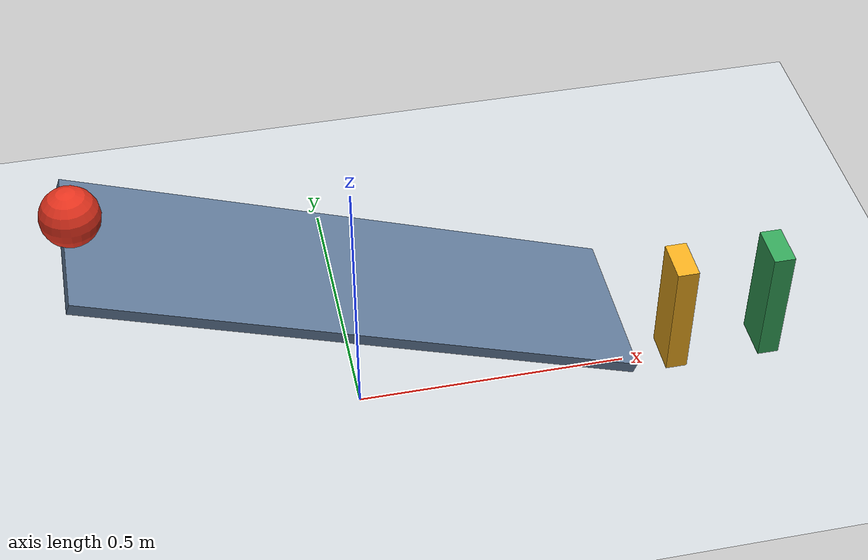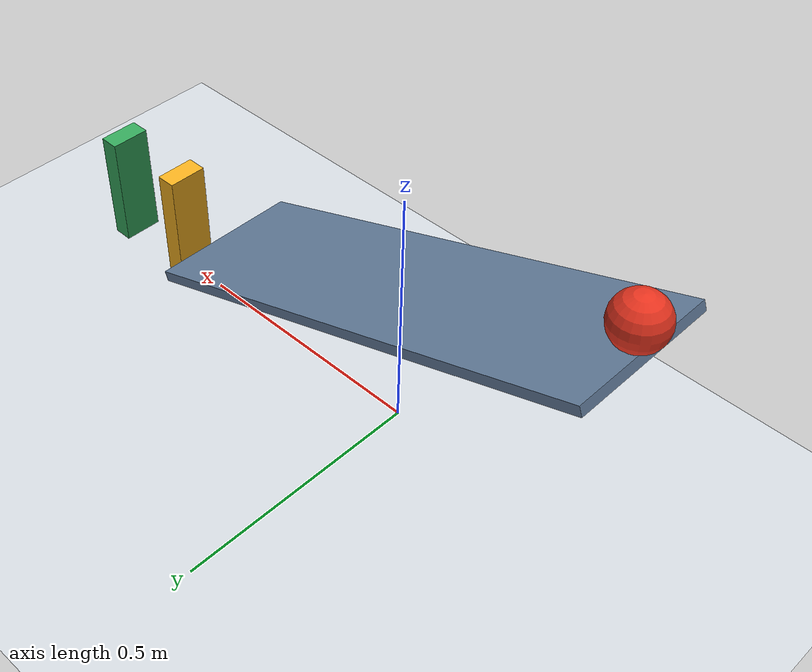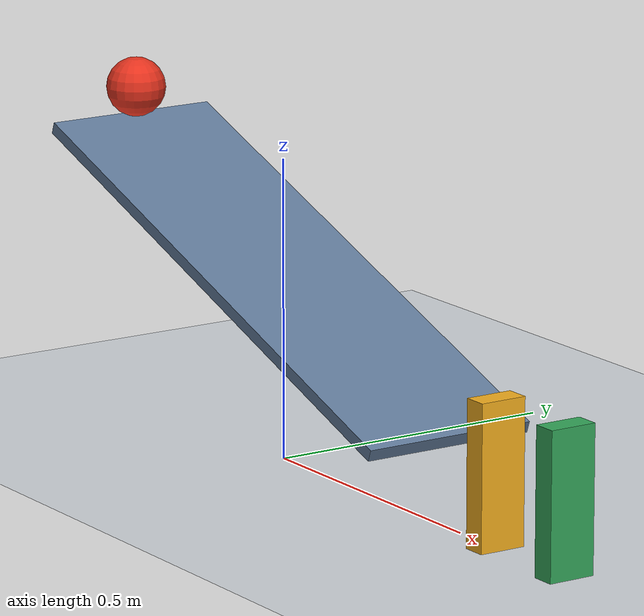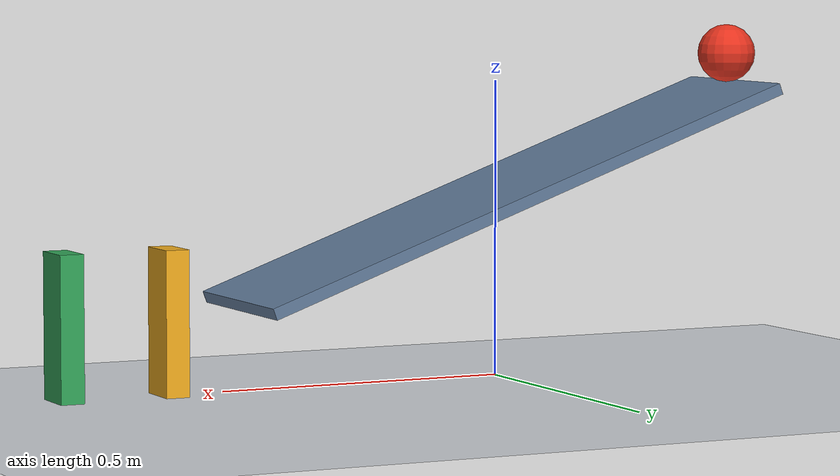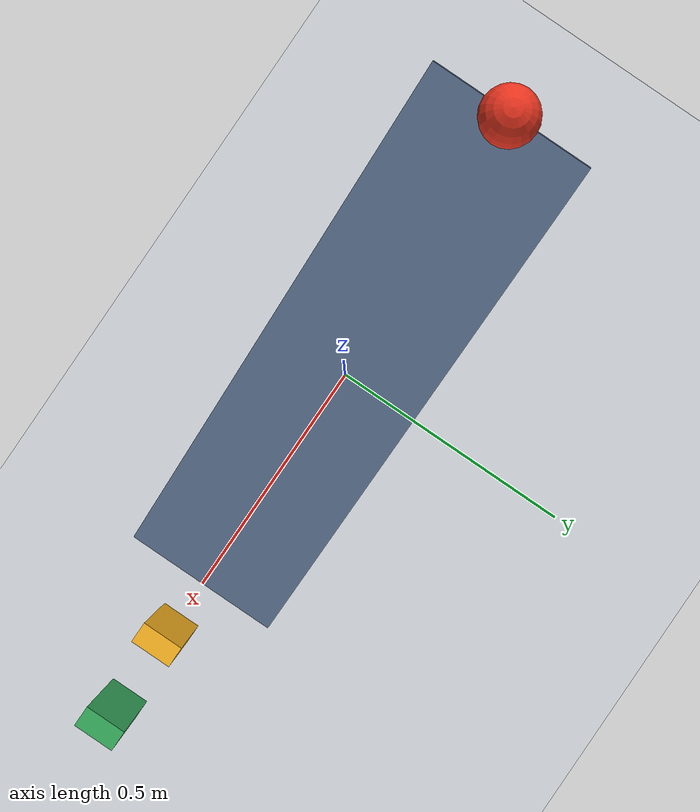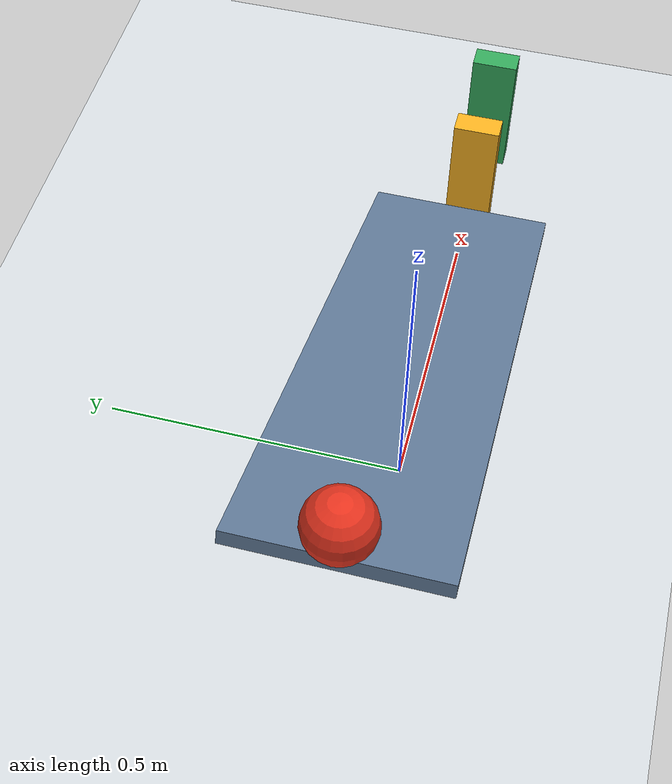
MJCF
<mujoco model="ramp_ball_domino_chain">
  <compiler angle="degree" inertiafromgeom="true"/>
  <option timestep="0.002" gravity="0 0 -9.81" integrator="implicitfast" solver="Newton" cone="elliptic" iterations="100" tolerance="1e-10"/>

  <custom>
    <numeric name="nominal_restitution" data="0.05"/>
    <!-- Documentary values: this scene has no hinge or slide joints. -->
    <numeric name="hinge_damping_Nm_s_per_rad" data="0.04"/>
    <numeric name="slide_damping_N_s_per_m" data="0.20"/>
  </custom>

  <visual>
    <headlight ambient="0.4 0.4 0.4" diffuse="0.7 0.7 0.7" specular="0.2 0.2 0.2"/>
  </visual>

  <worldbody>
    <light name="main_light" pos="0 -2 3" dir="0 0 -1"/>
    <camera name="overview" pos="1.6 -2.4 1.5" xyaxes="0.923 0.385 0 -0.170 0.408 0.897"/>

    <geom name="floor" type="plane" pos="0 0 0" size="4 3 0.1" friction="0.70 0.005 0.005" condim="6" solref="0.008 0.690107" solimp="0.999 0.999 0.001 0.5 2" rgba="0.82 0.84 0.86 1"/>

    <!-- The upper ramp face is 1.00 m long and 0.30 m wide.
         It descends toward +x at 20 degrees.
         Its low-end upper edge is (0.473266512, 0, 0.15). -->
    <body name="ramp1" pos="0 0 0.311613144" euler="0 20 0">
      <geom name="ramp1_surface" type="box" size="0.50 0.15 0.01" friction="0.70 0.005 0.005" condim="6" solref="0.008 0.690107" solimp="0.999 0.999 0.001 0.5 2" rgba="0.38 0.48 0.60 1"/>
    </body>

    <!-- Initially tangent to the ramp at its high end, with zero velocity. -->
    <body name="ball1" pos="-0.449325101 0 0.539004773">
      <freejoint name="ball1_free"/>
      <geom name="ball1_sphere" type="sphere" size="0.05" mass="0.20" friction="0.70 0.005 0.005" condim="6" solref="0.008 0.690107" solimp="0.999 0.999 0.001 0.5 2" rgba="0.90 0.20 0.12 1"/>
    </body>

    <!-- Each domino measures 0.08 by 0.04 by 0.24 m.
         Rotation puts its 0.04 m thickness along the +x travel direction.
         Domino1's near face is 0.10 m beyond the ramp's low-end edge. -->
    <body name="domino1" pos="0.593266512 0 0.12" quat="0.707106781 0 0 0.707106781">
      <freejoint name="domino1_free"/>
      <geom name="domino1_box" type="box" size="0.04 0.02 0.12" mass="0.25" friction="0.70 0.005 0.005" condim="6" solref="0.008 0.690107" solimp="0.999 0.999 0.001 0.5 2" rgba="0.95 0.68 0.12 1"/>
    </body>

    <!-- Center-to-center spacing from domino1 is exactly 0.18 m. -->
    <body name="domino2" pos="0.773266512 0 0.12" quat="0.707106781 0 0 0.707106781">
      <freejoint name="domino2_free"/>
      <geom name="domino2_box" type="box" size="0.04 0.02 0.12" mass="0.25" friction="0.70 0.005 0.005" condim="6" solref="0.008 0.690107" solimp="0.999 0.999 0.001 0.5 2" rgba="0.20 0.65 0.35 1"/>
    </body>
  </worldbody>

  <keyframe>
    <!-- Omitted qpos uses the initial body poses above. -->
    <key name="start" time="0" qvel="0 0 0 0 0 0 0 0 0 0 0 0 0 0 0 0 0 0"/>
  </keyframe>
</mujoco>
